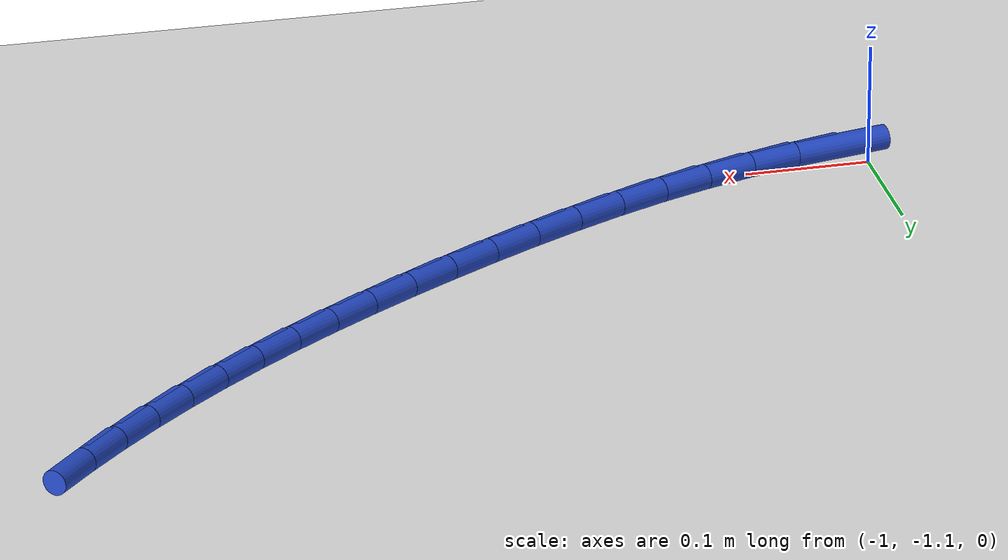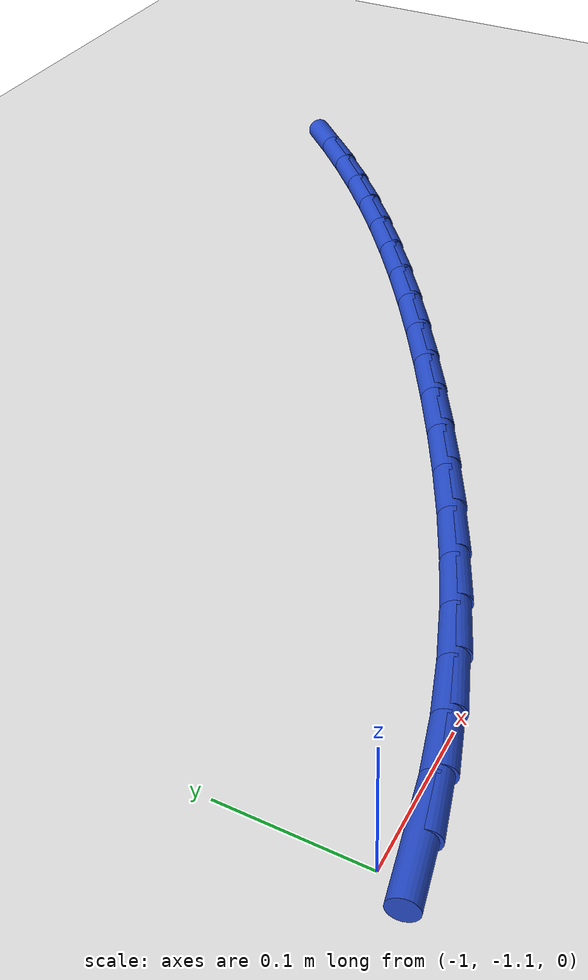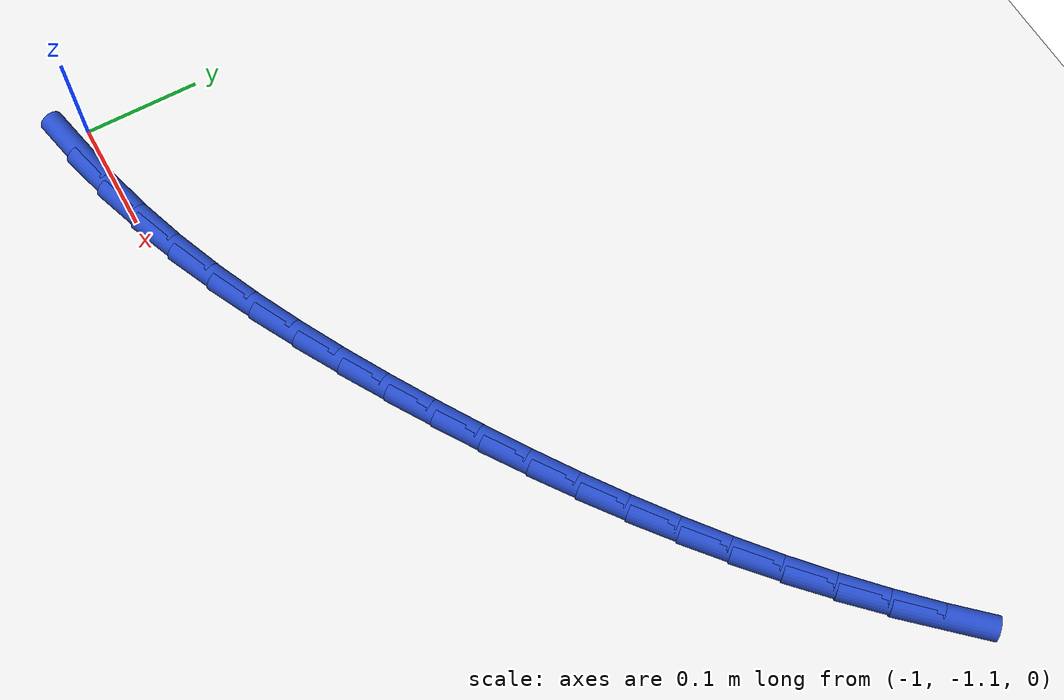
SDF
<sdf version="1.6">
 <world name="default">
  <model name="ground_plane">
   <static>1</static>
   <link name="link">
    <collision name="collision">
     <geometry><plane><normal>0 0 1</normal><size>100 100</size></plane></geometry>
     <surface><friction><ode><mu>100</mu><mu2>50</mu2></ode></friction></surface>
    </collision>
    <visual name="visual">
     <cast_shadows>0</cast_shadows>
     <geometry><plane><normal>0 0 1</normal><size>100 100</size></plane></geometry>
     <material>
      <script><uri>file://media/materials/scripts/gazebo.material</uri><name>Gazebo/WhiteGlow</name></script>
     </material>
    </visual>
   </link>
  </model>
  <model name="line">
   <link name="link_122">
    <pose>-0.9806429296515943 -1.1153555324253024 0.01 0 1.57 0.20652123331617492</pose>
    <collision name="collision">
     <geometry><cylinder><radius>0.01</radius><length>0.08</length></cylinder></geometry>
    </collision>
    <visual name="visual">
     <material>
      <script><name>Gazebo/Blue</name><uri>file://media/materials/scripts/gazebo.material</uri></script>
     </material>
     <geometry><cylinder><radius>0.01</radius><length>0.08</length></cylinder></geometry>
    </visual>
   </link>
   <link name="link_123">
    <pose>-0.9400776720745635 -1.1068567735284314 0.01 0 1.57 0.2696467943702345</pose>
    <collision name="collision">
     <geometry><cylinder><radius>0.01</radius><length>0.08</length></cylinder></geometry>
    </collision>
    <visual name="visual">
     <material>
      <script><name>Gazebo/Blue</name><uri>file://media/materials/scripts/gazebo.material</uri></script>
     </material>
     <geometry><cylinder><radius>0.01</radius><length>0.08</length></cylinder></geometry>
    </visual>
   </link>
   <link name="link_124">
    <pose>-0.8995998423426573 -1.0956695954005284 0.01 0 1.57 0.32514602767515266</pose>
    <collision name="collision">
     <geometry><cylinder><radius>0.01</radius><length>0.08</length></cylinder></geometry>
    </collision>
    <visual name="visual">
     <material>
      <script><name>Gazebo/Blue</name><uri>file://media/materials/scripts/gazebo.material</uri></script>
     </material>
     <geometry><cylinder><radius>0.01</radius><length>0.08</length></cylinder></geometry>
    </visual>
   </link>
   <link name="link_125">
    <pose>-0.859300680308568 -1.082084329941088 0.01 0 1.57 0.3736244895433856</pose>
    <collision name="collision">
     <geometry><cylinder><radius>0.01</radius><length>0.08</length></cylinder></geometry>
    </collision>
    <visual name="visual">
     <material>
      <script><name>Gazebo/Blue</name><uri>file://media/materials/scripts/gazebo.material</uri></script>
     </material>
     <geometry><cylinder><radius>0.01</radius><length>0.08</length></cylinder></geometry>
    </visual>
   </link>
   <link name="link_126">
    <pose>-0.8192714258249878 -1.0663913090496042 0.01 0 1.57 0.4156990649977809</pose>
    <collision name="collision">
     <geometry><cylinder><radius>0.01</radius><length>0.08</length></cylinder></geometry>
    </collision>
    <visual name="visual">
     <material>
      <script><name>Gazebo/Blue</name><uri>file://media/materials/scripts/gazebo.material</uri></script>
     </material>
     <geometry><cylinder><radius>0.01</radius><length>0.08</length></cylinder></geometry>
    </visual>
   </link>
   <link name="link_127">
    <pose>-0.7796033187446108 -1.0488808646255714 0.01 0 1.57 0.4519454685528385</pose>
    <collision name="collision">
     <geometry><cylinder><radius>0.01</radius><length>0.08</length></cylinder></geometry>
    </collision>
    <visual name="visual">
     <material>
      <script><name>Gazebo/Blue</name><uri>file://media/materials/scripts/gazebo.material</uri></script>
     </material>
     <geometry><cylinder><radius>0.01</radius><length>0.08</length></cylinder></geometry>
    </visual>
   </link>
   <link name="link_128">
    <pose>-0.740387598920129 -1.0298433285684843 0.01 0 1.57 0.4828680246578186</pose>
    <collision name="collision">
     <geometry><cylinder><radius>0.01</radius><length>0.08</length></cylinder></geometry>
    </collision>
    <visual name="visual">
     <material>
      <script><name>Gazebo/Blue</name><uri>file://media/materials/scripts/gazebo.material</uri></script>
     </material>
     <geometry><cylinder><radius>0.01</radius><length>0.08</length></cylinder></geometry>
    </visual>
   </link>
   <link name="link_129">
    <pose>-0.7017155062042346 -1.0095690327778364 0.01 0 1.57 0.5088833260164546</pose>
    <collision name="collision">
     <geometry><cylinder><radius>0.01</radius><length>0.08</length></cylinder></geometry>
    </collision>
    <visual name="visual">
     <material>
      <script><name>Gazebo/Blue</name><uri>file://media/materials/scripts/gazebo.material</uri></script>
     </material>
     <geometry><cylinder><radius>0.01</radius><length>0.08</length></cylinder></geometry>
    </visual>
   </link>
   <link name="link_130">
    <pose>-0.6636782804496206 -0.9883483091531223 0.01 0 1.57 0.5303197044833177</pose>
    <collision name="collision">
     <geometry><cylinder><radius>0.01</radius><length>0.08</length></cylinder></geometry>
    </collision>
    <visual name="visual">
     <material>
      <script><name>Gazebo/Blue</name><uri>file://media/materials/scripts/gazebo.material</uri></script>
     </material>
     <geometry><cylinder><radius>0.01</radius><length>0.08</length></cylinder></geometry>
    </visual>
   </link>
   <link name="link_131">
    <pose>-0.6263670432377193 -0.9664709938740424 0.01 0 1.57 0.549113275693469</pose>
    <collision name="collision">
     <geometry><cylinder><radius>0.01</radius><length>0.08</length></cylinder></geometry>
    </collision>
    <visual name="visual">
     <material>
      <script><name>Gazebo/Blue</name><uri>file://media/materials/scripts/gazebo.material</uri></script>
     </material>
     <geometry><cylinder><radius>0.01</radius><length>0.08</length></cylinder></geometry>
    </visual>
   </link>
   <link name="link_132">
    <pose>-0.5898488433005723 -0.9441260246606964 0.01 0 1.57 0.5691447090019394</pose>
    <collision name="collision">
     <geometry><cylinder><radius>0.01</radius><length>0.08</length></cylinder></geometry>
    </collision>
    <visual name="visual">
     <material>
      <script><name>Gazebo/Blue</name><uri>file://media/materials/scripts/gazebo.material</uri></script>
     </material>
     <geometry><cylinder><radius>0.01</radius><length>0.08</length></cylinder></geometry>
    </visual>
   </link>
   <link name="link_133">
    <pose>-0.5541375029536527 -0.9212792470950593 0.01 0 1.57 0.590921524753905</pose>
    <collision name="collision">
     <geometry><cylinder><radius>0.01</radius><length>0.08</length></cylinder></geometry>
    </collision>
    <visual name="visual">
     <material>
      <script><name>Gazebo/Blue</name><uri>file://media/materials/scripts/gazebo.material</uri></script>
     </material>
     <geometry><cylinder><radius>0.01</radius><length>0.08</length></cylinder></geometry>
    </visual>
   </link>
   <link name="link_134">
    <pose>-0.519239716940019 -0.8978666323946013 0.01 0 1.57 0.6144229587831589</pose>
    <collision name="collision">
     <geometry><cylinder><radius>0.01</radius><length>0.08</length></cylinder></geometry>
    </collision>
    <visual name="visual">
     <material>
      <script><name>Gazebo/Blue</name><uri>file://media/materials/scripts/gazebo.material</uri></script>
     </material>
     <geometry><cylinder><radius>0.01</radius><length>0.08</length></cylinder></geometry>
    </visual>
   </link>
   <link name="link_135">
    <pose>-0.48516218000272987 -0.8738241517767925 0.01 0 1.57 0.6396100408752408</pose>
    <collision name="collision">
     <geometry><cylinder><radius>0.01</radius><length>0.08</length></cylinder></geometry>
    </collision>
    <visual name="visual">
     <material>
      <script><name>Gazebo/Blue</name><uri>file://media/materials/scripts/gazebo.material</uri></script>
     </material>
     <geometry><cylinder><radius>0.01</radius><length>0.08</length></cylinder></geometry>
    </visual>
   </link>
   <link name="link_136">
    <pose>-0.4519115868848425 -0.8490877764591022 0.01 0 1.57 0.6664236764210805</pose>
    <collision name="collision">
     <geometry><cylinder><radius>0.01</radius><length>0.08</length></cylinder></geometry>
    </collision>
    <visual name="visual">
     <material>
      <script><name>Gazebo/Blue</name><uri>file://media/materials/scripts/gazebo.material</uri></script>
     </material>
     <geometry><cylinder><radius>0.01</radius><length>0.08</length></cylinder></geometry>
    </visual>
   </link>
   <link name="link_137">
    <pose>-0.4194946323294169 -0.8235934776590019 0.01 0 1.57 0.6947831307214288</pose>
    <collision name="collision">
     <geometry><cylinder><radius>0.01</radius><length>0.08</length></cylinder></geometry>
    </collision>
    <visual name="visual">
     <material>
      <script><name>Gazebo/Blue</name><uri>file://media/materials/scripts/gazebo.material</uri></script>
     </material>
     <geometry><cylinder><radius>0.01</radius><length>0.08</length></cylinder></geometry>
    </visual>
   </link>
   <link name="link_138">
    <pose>-0.38791801107951074 -0.7972772265939615 0.01 0 1.57 0.7245851013515188</pose>
    <collision name="collision">
     <geometry><cylinder><radius>0.01</radius><length>0.08</length></cylinder></geometry>
    </collision>
    <visual name="visual">
     <material>
      <script><name>Gazebo/Blue</name><uri>file://media/materials/scripts/gazebo.material</uri></script>
     </material>
     <geometry><cylinder><radius>0.01</radius><length>0.08</length></cylinder></geometry>
    </visual>
   </link>
   <link name="link_139">
    <pose>-0.35718841787818223 -0.7700749944814504 0.01 0 1.57 0.7557035592959972</pose>
    <collision name="collision">
     <geometry><cylinder><radius>0.01</radius><length>0.08</length></cylinder></geometry>
    </collision>
    <visual name="visual">
     <material>
      <script><name>Gazebo/Blue</name><uri>file://media/materials/scripts/gazebo.material</uri></script>
     </material>
     <geometry><cylinder><radius>0.01</radius><length>0.08</length></cylinder></geometry>
    </visual>
   </link>
   <link name="link_140">
    <pose>-0.3273125474684901 -0.7419227525389397 0.01 0 1.57 0.7879905121172854</pose>
    <collision name="collision">
     <geometry><cylinder><radius>0.01</radius><length>0.08</length></cylinder></geometry>
    </collision>
    <visual name="visual">
     <material>
      <script><name>Gazebo/Blue</name><uri>file://media/materials/scripts/gazebo.material</uri></script>
     </material>
     <geometry><cylinder><radius>0.01</radius><length>0.08</length></cylinder></geometry>
    </visual>
   </link>
   <link name="link_141">
    <pose>-0.29829709459349185 -0.7127564719838984 0.01 0 1.57 0.8212578894410865</pose>
    <collision name="collision">
     <geometry><cylinder><radius>0.01</radius><length>0.08</length></cylinder></geometry>
    </collision>
    <visual name="visual">
     <material>
      <script><name>Gazebo/Blue</name><uri>file://media/materials/scripts/gazebo.material</uri></script>
     </material>
     <geometry><cylinder><radius>0.01</radius><length>0.08</length></cylinder></geometry>
    </visual>
   </link>
  </model>
 </world>
</sdf>
